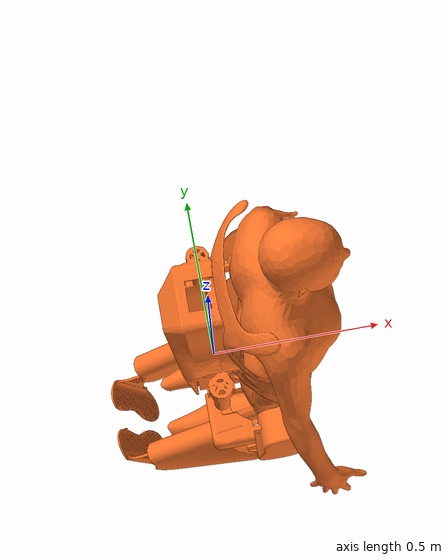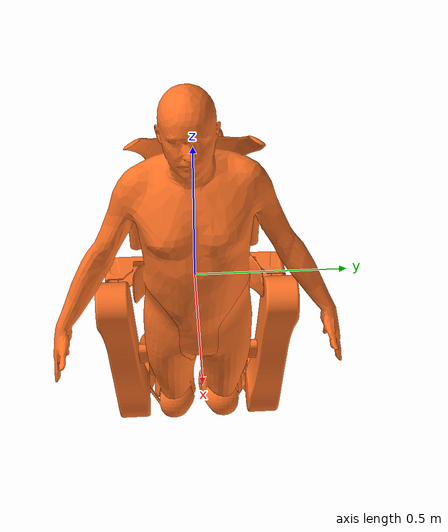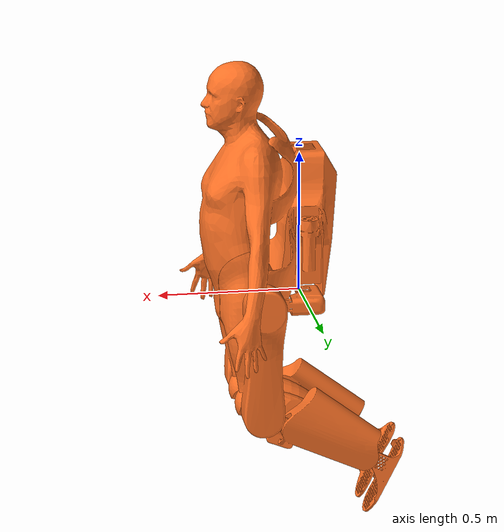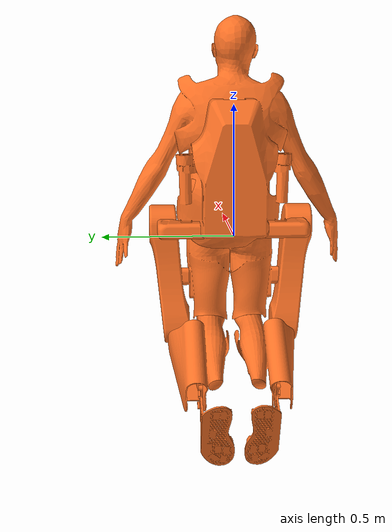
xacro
<?xml version="1.0" ?>
<!-- Hennie URDF for IK solver -->
<!-- written by Tessel 18/04/23 -->
<!-- written by Joy 08/06/23 -->

<robot name ="Hennie">
	<!-- Robot Link Definitions -->
	<!--     22 linkages        -->
	<link name="backpack">
		<inertial>
			<origin rpy="0 0 0" xyz="0.013 0.001 0.24"/>
      		<mass value="11.02"/>
      		<inertia ixx="0.379" ixy="0" ixz="-0.008" iyy="0.245" iyz="0.001" izz="0.173"/>
		</inertial>
		<visual>
			<geometry>
				<mesh filename="package://march_gym/march_gym/envs/assets/meshes/Backpack.obj" scale="1 1 1"/>
			</geometry>
			<material name="">
				<color rgba="1.0 0.45 0.15 1"/>
			</material>
		</visual>
		<collision>
			<geometry>
				<mesh filename="package://march_gym/march_gym/envs/assets/meshes/Backpack.obj" scale="1 1 1"/>
			</geometry>
		</collision>
	</link>
	<link name="L_hip">
		<inertial>
			<origin rpy="0 0 0" xyz="0.065 0.112 0"/>
      		<mass value="1.277"/>
      		<inertia ixx="0.006" ixy="-0.004" ixz="0" iyy="0.006" iyz="0" izz="0.011"/>
		</inertial>
		<visual>
			<geometry>
				<mesh filename="package://march_gym/march_gym/envs/assets/meshes/HipLeft.obj" scale="1 1 1"/>
			</geometry>
			<material name="">
				<color rgba="1.0 0.45 0.15 1"/>
			</material>
		</visual>
		<collision>
			<geometry>
				<mesh filename="package://march_gym/march_gym/envs/assets/meshes/HipLeft.obj" scale="1 1 1"/>
			</geometry>
		</collision>
	</link>
	<link name="L_UL">
		<inertial>
			<origin rpy="0 0 0" xyz="0 -0.034 -0.206"/>
			<mass value="8.566"/>
			<inertia ixx="0.259" ixy="-0.001" ixz="0" iyy="0.256" iyz="-0.036" izz="0.023"/>
		</inertial>
		<visual>
			<geometry>
				<mesh filename="package://march_gym/march_gym/envs/assets/meshes/UpperLegLeft.obj" scale="1 1 1"/>
			</geometry>
			<material name="">
				<color rgba="1.0 0.45 0.15 1"/>
			</material>
		</visual>
		<collision>
			<geometry>
				<mesh filename="package://march_gym/march_gym/envs/assets/meshes/UpperLegLeft.obj"  scale="1 1 1"/>
			</geometry>
		</collision>
	</link>
	<link name="L_LL">
		<inertial>
			<origin rpy="0 0 0" xyz="-0.034 -0.04 -0.223"/>
			<mass value="4.159"/>
			<inertia ixx="0.055" ixy="0.001" ixz="-0.006" iyy="0.064" iyz="-0.002" izz="0.019"/>
		</inertial>
		<visual>
			<geometry>
				<mesh filename="package://march_gym/march_gym/envs/assets/meshes/LowerLegLeft.obj" scale="1 1 1"/>
			</geometry>
			<material name="">
				<color rgba="1.0 0.45 0.15 1"/>
			</material>
		</visual>
		<collision>
			<geometry>
				<mesh filename="package://march_gym/march_gym/envs/assets/meshes/LowerLegLeft.obj" scale="1 1 1"/>
			</geometry>
		</collision>
	</link>
	<link name="L_foot">
		<inertial>
			<origin rpy="0 0 0" xyz="0.033 -0.041 -0.08"/>
			<mass value="1.22"/>
			<inertia ixx="0.006" ixy="0.001" ixz="0.002" iyy="0.01" iyz="-0.002" izz="0.008"/>
		</inertial>
		<visual>
			<geometry>
				<mesh filename="package://march_gym/march_gym/envs/assets/meshes/FootLeft.obj" scale="1 1 1"/>
			</geometry>
			<material name="">
				<color rgba="1.0 0.45 0.15 1"/>
			</material>
		</visual>
		<collision>
			<geometry>
				<mesh filename="package://march_gym/march_gym/envs/assets/meshes/FootLeft.obj" scale="1 1 1"/>
			</geometry>
		</collision>
	</link>
	<link name="R_hip">
		<inertial>
			<origin rpy="0 0 0" xyz="0.065 -0.112 0"/>
      		<mass value="1.277"/>
      		<inertia ixx="0.006" ixy="0.004" ixz="0" iyy="0.006" iyz="-0" izz="0.011"/>
		</inertial>
		<visual>
			<geometry>
				<mesh filename="package://march_gym/march_gym/envs/assets/meshes/HipLeft.obj" scale="1 -1 1"/>
			</geometry>
			<material name="">
				<color rgba="1.0 0.45 0.15 1"/>
			</material>
		</visual>
		<collision>
			<geometry>
				<mesh filename="package://march_gym/march_gym/envs/assets/meshes/HipLeft.obj" scale="1 -1 1"/>
			</geometry>
		</collision>
	</link>
	<link name="R_UL">
		<inertial>
			<origin rpy="0 0 0" xyz="0 0.034 -0.206"/>
			<mass value="8.566"/>
			<inertia ixx="0.259" ixy="0.001" ixz="0" iyy="0.256" iyz="0.036" izz="0.023"/>
		</inertial>
		<visual>
			<geometry>
				<mesh filename="package://march_gym/march_gym/envs/assets/meshes/UpperLegLeft.obj" scale="1 -1 1"/>
			</geometry>
			<material name="">
				<color rgba="1.0 0.45 0.15 1"/>
			</material>
		</visual>
		<collision>
			<geometry>
				<mesh filename="package://march_gym/march_gym/envs/assets/meshes/UpperLegLeft.obj" scale="1 -1 1"/>
			</geometry>
		</collision>
	</link>
	<link name="R_LL">
		<inertial>
			<origin rpy="0 0 0" xyz="-0.034 0.04 -0.223"/>
			<mass value="4.159"/>
			<inertia ixx="0.055" ixy="-0.001" ixz="-0.006" iyy="0.064" iyz="0.002" izz="0.019"/>
		</inertial>
		<visual>
			<geometry>
				<mesh filename="package://march_gym/march_gym/envs/assets/meshes/LowerLegLeft.obj" scale="1 -1 1"/>
			</geometry>
			<material name="">
				<color rgba="1.0 0.45 0.15 1"/>
			</material>
		</visual>
		<collision>
			<geometry>
				<mesh filename="package://march_gym/march_gym/envs/assets/meshes/LowerLegLeft.obj" scale="1 -1 1"/>
			</geometry>
		</collision>
	</link>
	<link name="R_foot">
		<inertial>
			<origin rpy="0 0 0" xyz="0.033 0.041 -0.08"/>
			<mass value="1.22"/>
			<inertia ixx="0.006" ixy="-0.001" ixz="0.002" iyy="0.01" iyz="0.002" izz="0.008"/>
		</inertial>
		<visual>
			<geometry>
				<mesh filename="package://march_gym/march_gym/envs/assets/meshes/FootLeft.obj" scale="1 -1 1"/>
			</geometry>
			<material name="">
				<color rgba="1.0 0.45 0.15 1"/>
			</material>
		</visual>
		<collision>
			<geometry>
				<mesh filename="package://march_gym/march_gym/envs/assets/meshes/FootLeft.obj" scale="1 -1 1"/>
			</geometry>
		</collision>
	</link>
	<link name="R_toe">
	</link>
	<link name="L_toe">
	</link>
	<link name="L_ground">
	</link>
	<link name="R_ground">
	</link>

	<!-- Robot Joint Definitions -->
	<joint name="left_hip_aa" type="revolute">
		<origin rpy="0 0 0" xyz="-0.021 0.08 0.025"/>
		<axis xyz="-1 0 0"/>
		<parent link="backpack"/>
		<child link="L_hip"/>
		<limit effort="280" lower="-0.2617993878" upper="0.1745329252" velocity="2.6"/>
	</joint>
	<joint name="left_hip_fe" type="revolute">
		<origin rpy="0 0 0.0" xyz="0.182 0.182 0"/>
		<axis xyz="0 -1 0"/>
		<parent link="L_hip"/>
		<child link="L_UL"/>
		<limit effort="250" lower="-0.1745329252" upper="1.9634954085" velocity="3.94"/>
	</joint>
	<joint name="left_knee" type="revolute">
		<origin rpy="0 0 0" xyz="0 -0.06 -0.413"/>
		<axis xyz="0 1 0"/>
		<parent link="L_UL"/>
		<child link="L_LL"/>
		<limit effort="250" lower="0.08" upper="2.131661565" velocity="3.94"/>
	</joint>
	<joint name="left_ankle" type="revolute">
		<origin rpy="0 0 0" xyz="0 -0.037 -0.414"/>
		<axis xyz="0 -1 0"/>
		<parent link="L_LL"/>
		<child link="L_foot"/>
		<limit effort="179" lower="-0.336332313" upper="0.155000" velocity="4.1"/>
	</joint>
	<joint name="right_hip_aa" type="revolute">
		<origin rpy="0 0 0" xyz="-0.021 -0.08 0.025"/>
		<axis xyz="1 0 0"/>
		<parent link="backpack"/>
		<child link="R_hip"/>
		<limit effort="280" lower="-0.2617993878" upper="0.1745329252" velocity="2.6"/>
	</joint>
	<joint name="right_hip_fe" type="revolute">
		<origin rpy="0 0 0.0" xyz="0.182 -0.182 0"/>
		<axis xyz="0 -1 0"/>
		<parent link="R_hip"/>
		<child link="R_UL"/>
		<limit effort="250" lower="-0.1745329252" upper="1.9634954085" velocity="3.94"/>
	</joint>
	<joint name="right_knee" type="revolute">
		<origin rpy="0 0 0" xyz="0 0.06 -0.413"/>
		<axis xyz="0 1 0"/>
		<parent link="R_UL"/>
		<child link="R_LL"/>
		<limit effort="250" lower="0.08" upper="2.131661565" velocity="3.94"/>
	</joint>
	<joint name="right_ankle" type="revolute">
		<origin rpy="0 0 0" xyz="0 0.037 -0.414"/>
		<axis xyz="0 -1 0"/>
		<parent link="R_LL"/>
		<child link="R_foot"/>
		<limit effort="179" lower="-0.336332313" upper="0.155000" velocity="4.1"/>
	</joint>
	<joint name="L_ground" type="fixed">
		<origin xyz="0 0 -0.126"/>
		<parent link="L_foot"/>
		<child link="L_ground"/>
	</joint>
	<joint name="R_ground" type="fixed">
		<origin xyz="0 0 -0.126"/>
		<parent link="R_foot"/>
		<child link="R_ground"/>
	</joint>

	<joint name="right_toe" type="fixed">
		<origin xyz="0.184 0.085 0"/>
		<parent link="R_ground"/>
		<child link="R_toe"/>
	</joint>

	<joint name="left_toe" type="fixed">
		<origin xyz="0.184 -0.085 0"/>
		<parent link="L_ground"/>
		<child link="L_toe"/>
	</joint>

	<!-- Robot Transmission Definitions -->
	<transmission name="L_HAATransmission">
            <joint name="left_hip_aa"/>
            <actuator>
                    <mechanicalReduction>25</mechanicalReduction>
                    <motorInertia>5.4</motorInertia>
            </actuator>
  	</transmission>
  	<transmission name="L_HFETransmission">
            <joint name="left_hip_fe"/>
            <actuator>
                    <mechanicalReduction>16</mechanicalReduction>
                    <motorInertia>6.0</motorInertia>
            </actuator>
  	</transmission>
  	<transmission name="L_KFETransmission">
            <joint name="left_knee"/>
            <actuator>
                    <mechanicalReduction>16</mechanicalReduction>
                    <motorInertia>6.0</motorInertia>
            </actuator>
  	</transmission>
  	<transmission name="L_ADPFTransmission">
            <joint name="left_ankle"/>
            <actuator>
                    <mechanicalReduction>50</mechanicalReduction>
                    <motorInertia>2.2</motorInertia>
            </actuator>
  	</transmission>
  	<transmission name="R_HAATransmission">
            <joint name="right_hip_aa"/>
            <actuator>
                    <mechanicalReduction>25</mechanicalReduction>
                    <motorInertia>5.4</motorInertia>
            </actuator>
  	</transmission>
  	<transmission name="R_HFETransmission">
            <joint name="right_hip_fe"/>
            <actuator>
                    <mechanicalReduction>16</mechanicalReduction>
                    <motorInertia>6.0</motorInertia>
            </actuator>
  	</transmission>
  	<transmission name="R_KFETransmission">
            <joint name="right_knee"/>
            <actuator>
                    <mechanicalReduction>16</mechanicalReduction>
                    <motorInertia>6.0</motorInertia>
            </actuator>
  	</transmission>
  	<transmission name="R_ADPFTransmission">
            <joint name="right_ankle"/>
            <actuator>
                    <mechanicalReduction>50</mechanicalReduction>
                    <motorInertia>2.2</motorInertia>
            </actuator>
  	</transmission>
</robot>
